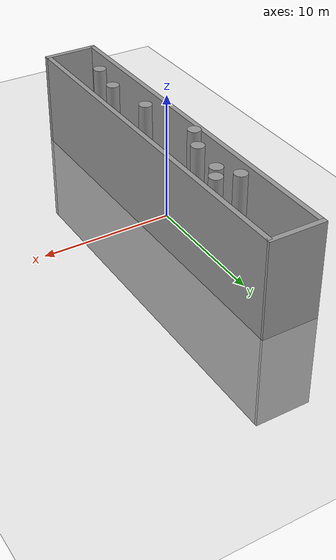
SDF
<?xml version="1.0" ?>
<sdf version="1.4">
  <world name="default">
    <include>
      <uri>model://ground_plane</uri>
      <color>0 0 0 </color>
    </include>
    <include>
      <uri>model://sun</uri>
    </include>

    <!-- long wall left -->
    <model name="wall_left" static="true">
      <pose>2.0 0 0 0 0 0</pose>
      <static>true</static>
      <link name="wall_body">
        <visual name="wall_visual">
          <geometry>
            <box>
                <size>.4 30 15</size>
            </box>
          </geometry>
          <material>
            <script>
              <name>Gazebo/Grey</name>
              <uri>file://media/materials/scripts/gazebo.material</uri>
            </script>
          </material>
        </visual>
        <collision name="wall_collision">
          <geometry>
            <box>
              <size>.4 30 15</size>
            </box>
          </geometry>
        </collision>
      </link>
    </model>

    <!-- long wall right -->
    <model name="wall_right" static="true">
      <pose>-2.0 0 0 0 0 0</pose>

      <static>true</static>

      <link name="wall_body">
        <visual name="wall_visual">
          <geometry>
            <box>
                <size>.4 30 15</size>
            </box>
          </geometry>
          <material>
            <script>
              <name>Gazebo/Grey</name>
              <uri>file://media/materials/scripts/gazebo.material</uri>
            </script>
          </material>
        </visual>
        <collision name="wall_collision">
          <geometry>
            <box>
              <size>.4 30 15</size>
            </box>
          </geometry>
        </collision>
      </link>
    </model>

        <!-- short wall front -->
    <model name="wall_front" static="true">
      <pose>0 15 0 0 0 0</pose>

      <static>true</static>

      <link name="wall_body">
        <visual name="wall_visual">
          <geometry>
            <box>
                <size> 4.4 .4 15</size>
            </box>
          </geometry>
          <material>
            <script>
              <name>Gazebo/Grey</name>
              <uri>file://media/materials/scripts/gazebo.material</uri>
            </script>
          </material>
        </visual>
        <collision name="wall_collision">
          <geometry>
            <box>
              <size>4.4 .4 15</size>
            </box>
          </geometry>
        </collision>
      </link>
    </model>

        <!-- short wall back -->
    <model name="wall_back" static="true">
      <pose>0 -15 0 0 0 0</pose>

      <static>true</static>

      <link name="wall_body">
        <visual name="wall_visual">
          <geometry>
            <box>
                <size> 4.4 .4 15</size>
            </box>
          </geometry>
          <material>
            <script>
              <name>Gazebo/Grey</name>
              <uri>file://media/materials/scripts/gazebo.material</uri>
            </script>
          </material>
        </visual>
        <collision name="wall_collision">
          <geometry>
            <box>
              <size> 4.4 .4 15</size>
            </box>
          </geometry>
        </collision>
      </link>
    </model>

    <model name="cyl" static="true">
      <pose>1.2 8 4 0 -0 0</pose>

      <static>true</static>

      <link name="cyl">
        <visual name="cyl">
          <geometry>
            <cylinder>
              <radius>0.5</radius>
              <length>8</length>
            </cylinder>
          </geometry>
          <material>
            <script>
              <name>Gazebo/Grey</name>
              <uri>file://media/materials/scripts/gazebo.material</uri>
            </script>
          </material>
        </visual>
        <collision name="cyl_collision">
          <geometry>
            <cylinder>
              <radius>0.5</radius>
              <length>1</length>
            </cylinder>
          </geometry>
        </collision>
      </link>
    </model>

    <model name="cyl2" static="true">
      <pose>-1 2 4 0 -0 0</pose>

      <static>true</static>

      <link name="cyl2">
        <visual name="cyl2">
          <geometry>
            <cylinder>
              <radius>0.5</radius>
              <length>8</length>
            </cylinder>
          </geometry>
          <material>
            <script>
              <name>Gazebo/Grey</name>
              <uri>file://media/materials/scripts/gazebo.material</uri>
            </script>
          </material>
        </visual>
        <collision name="cyl2_collision">
          <geometry>
            <cylinder>
              <radius>0.5</radius>
              <length>1</length>
            </cylinder>
          </geometry>
        </collision>
      </link>
    </model>

    <model name="cyl3" static="true">
      <pose>0 -3 4 0 -0 0</pose>

      <static>true</static>

      <link name="cyl3">
        <visual name="cyl3">
          <geometry>
            <cylinder>
              <radius>0.5</radius>
              <length>8</length>
            </cylinder>
          </geometry>
          <material>
            <script>
              <name>Gazebo/Grey</name>
              <uri>file://media/materials/scripts/gazebo.material</uri>
            </script>
          </material>
        </visual>
        <collision name="cyl3_collision">
          <geometry>
            <cylinder>
              <radius>0.5</radius>
              <length>1</length>
            </cylinder>
          </geometry>
        </collision>
      </link>
    </model>

    <model name="cyl4" static="true">
      <pose>0.5 7 4 0 -0 0</pose>

      <static>true</static>

      <link name="cyl4">
        <visual name="cyl4">
          <geometry>
            <cylinder>
              <radius>0.5</radius>
              <length>8</length>
            </cylinder>
          </geometry>
          <material>
            <script>
              <name>Gazebo/Grey</name>
              <uri>file://media/materials/scripts/gazebo.material</uri>
            </script>
          </material>
        </visual>
        <collision name="cyl4_collision">
          <geometry>
            <cylinder>
              <radius>0.5</radius>
              <length>1</length>
            </cylinder>
          </geometry>
        </collision>
      </link>
    </model>

    <model name="cyl5" static="true">
      <pose>-0.4 8.5 4 0 -0 0</pose>

      <static>true</static>

      <link name="cyl5">
        <visual name="cyl5">
          <geometry>
            <cylinder>
              <radius>0.5</radius>
              <length>8</length>
            </cylinder>
          </geometry>
          <material>
            <script>
              <name>Gazebo/Grey</name>
              <uri>file://media/materials/scripts/gazebo.material</uri>
            </script>
          </material>
        </visual>
        <collision name="cyl5_collision">
          <geometry>
            <cylinder>
              <radius>0.5</radius>
              <length>1</length>
            </cylinder>
          </geometry>
        </collision>
      </link>
    </model>

    <model name="cyl6" static="true">
      <pose>0 4 4 0 -0 0</pose>

      <static>true</static>

      <link name="cyl6">
        <visual name="cyl6">
          <geometry>
            <cylinder>
              <radius>0.5</radius>
              <length>8</length>
            </cylinder>
          </geometry>
          <material>
            <script>
              <name>Gazebo/Grey</name>
              <uri>file://media/materials/scripts/gazebo.material</uri>
            </script>
          </material>
        </visual>
        <collision name="cyl6_collision">
          <geometry>
            <cylinder>
              <radius>0.5</radius>
              <length>1</length>
            </cylinder>
          </geometry>
        </collision>
      </link>
    </model>

    <model name="cyl7" static="true">
      <pose>0 -10 4 0 -0 0</pose>

      <static>true</static>

      <link name="cyl7">
        <visual name="cyl7">
          <geometry>
            <cylinder>
              <radius>0.5</radius>
              <length>8</length>
            </cylinder>
          </geometry>
          <material>
            <script>
              <name>Gazebo/Grey</name>
              <uri>file://media/materials/scripts/gazebo.material</uri>
            </script>
          </material>
        </visual>
        <collision name="cyl7_collision">
          <geometry>
            <cylinder>
              <radius>0.5</radius>
              <length>1</length>
            </cylinder>
          </geometry>
        </collision>
      </link>
    </model>

    <model name="cyl8" static="true">
      <pose>0.5 -7 4 0 -0 0</pose>

      <static>true</static>

      <link name="cyl8">
        <visual name="cyl8">
          <geometry>
            <cylinder>
              <radius>0.5</radius>
              <length>8</length>
            </cylinder>
          </geometry>
          <material>
            <script>
              <name>Gazebo/Grey</name>
              <uri>file://media/materials/scripts/gazebo.material</uri>
            </script>
          </material>
        </visual>
        <collision name="cyl8_collision">
          <geometry>
            <cylinder>
              <radius>0.5</radius>
              <length>1</length>
            </cylinder>
          </geometry>
        </collision>
      </link>
    </model>

    <!-- Only require one ROS interface plugin per world, as any other plugin can connect a Gazebo
        topic to a ROS topic (or vise versa). -->
    <plugin name="ros_interface_plugin" filename="librotors_gazebo_ros_interface_plugin.so"></plugin>

    <spherical_coordinates>
      <surface_model>EARTH_WGS84</surface_model>
      <latitude_deg>47.3667</latitude_deg>
      <longitude_deg>8.5500</longitude_deg>
      <elevation>500.0</elevation>
      <heading_deg>0</heading_deg>
    </spherical_coordinates>
    <physics type='ode'>
      <ode>
        <solver>
          <type>quick</type>
          <iters>1000</iters>
          <sor>1.3</sor>
        </solver>
        <constraints>
          <cfm>0</cfm>
          <erp>0.2</erp>
          <contact_max_correcting_vel>100</contact_max_correcting_vel>
          <contact_surface_layer>0.001</contact_surface_layer>
        </constraints>
      </ode>
      <max_step_size>0.01</max_step_size>
      <real_time_factor>1</real_time_factor>
      <real_time_update_rate>100</real_time_update_rate>
      <gravity>0 0 -9.8</gravity>
    </physics>
  </world>
</sdf>
